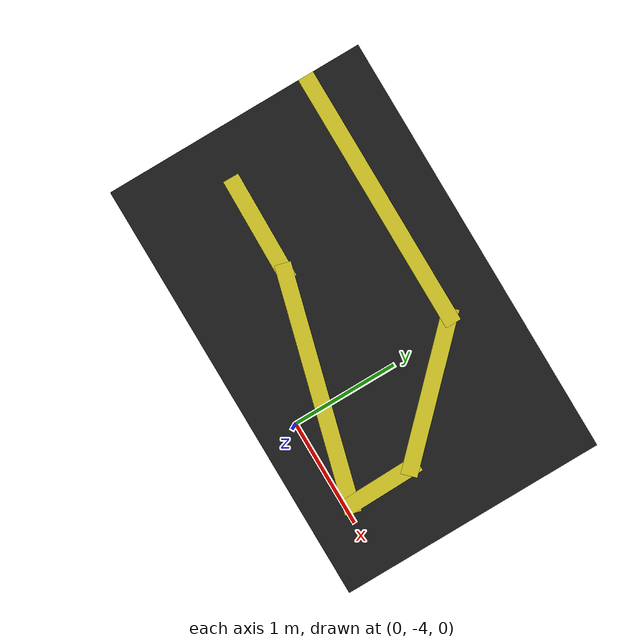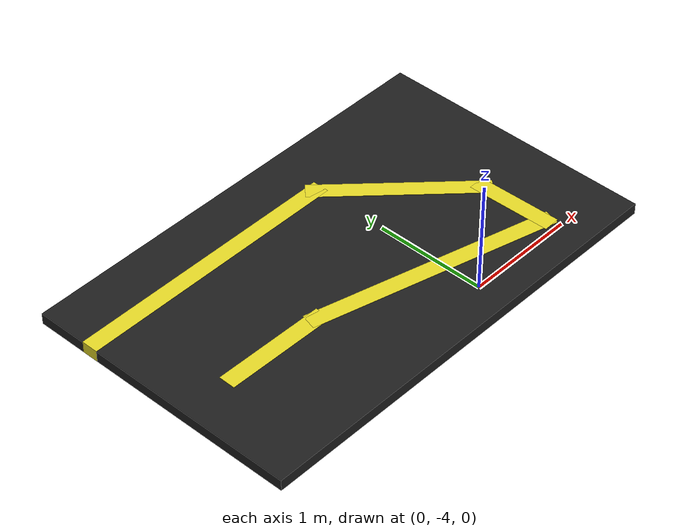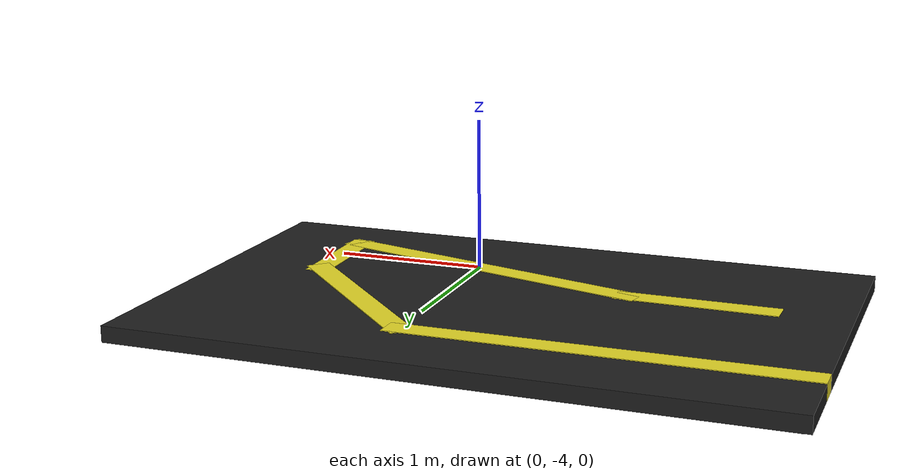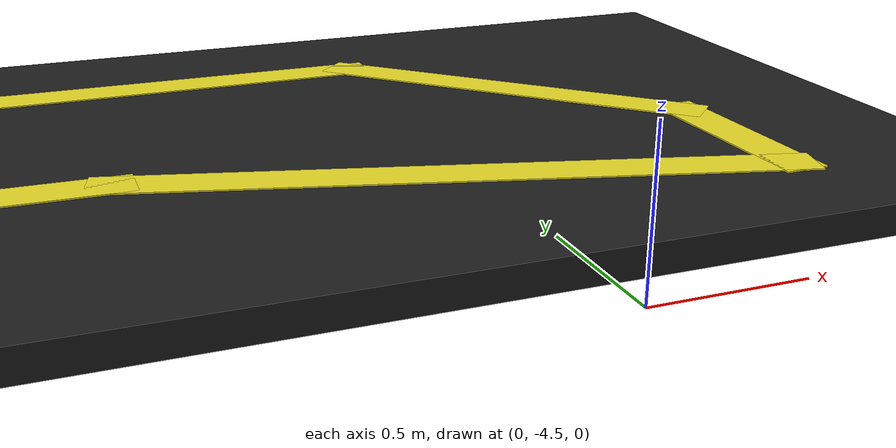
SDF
<?xml version='1.0'?>
<sdf version='1.6'>
  <model name='pista?'>
    <pose frame=''>-0.525 -3.095 0 0 -0 0</pose>
    <link name='Floor_4'>
      <collision name='Floor_4_Collision'>
        <geometry>
          <box>
            <size>4.03987 2.5 0.1</size>
          </box>
        </geometry>
        <pose frame=''>0 0 0.05 0 -0 0</pose>
      </collision>
      <visual name='Floor_4_Visual'>
        <pose frame=''>0 0 0.05 0 -0 0</pose>
        <geometry>
          <box>
            <size>4.03987 2.5 0.1</size>
          </box>
        </geometry>
        <material>
          <script>
            <uri>file://media/materials/scripts/gazebo.material</uri>
            <name>Gazebo/Black</name>
          </script>
          <ambient>0 0 0 0</ambient>
        </material>
        <meta>
          <layer>1</layer>
        </meta>
      </visual>
      <pose frame=''>0 0 0.001 0 -0 0</pose>
    </link>
    <link name='Wall_0'>
      <collision name='Wall_0_Collision'>
        <geometry>
          <box>
            <size>2.5 0.15 0.001</size>
          </box>
        </geometry>
        <pose frame=''>0 0 0.0005 0 -0 0</pose>
      </collision>
      <visual name='Wall_0_Visual'>
        <pose frame=''>0 0 0.0005 0 -0 0</pose>
        <geometry>
          <box>
            <size>2.5 0.15 0.001</size>
          </box>
        </geometry>
        <material>
          <script>
            <uri>file://media/materials/scripts/gazebo.material</uri>
            <name>Gazebo/Black</name>
          </script>
          <ambient>0 0 0 0</ambient>
        </material>
        <meta>
          <layer>0</layer>
        </meta>
      </visual>
      <pose frame=''>-1.905 0 0 0 -0 -1.5708</pose>
    </link>
    <link name='Wall_1'>
      <collision name='Wall_1_Collision'>
        <geometry>
          <box>
            <size>4 0.15 0.001</size>
          </box>
        </geometry>
        <pose frame=''>0 0 0.0005 0 -0 0</pose>
      </collision>
      <visual name='Wall_1_Visual'>
        <pose frame=''>0 0 0.0005 0 -0 0</pose>
        <geometry>
          <box>
            <size>4 0.15 0.001</size>
          </box>
        </geometry>
        <material>
          <script>
            <uri>file://media/materials/scripts/gazebo.material</uri>
            <name>Gazebo/Black</name>
          </script>
          <ambient>0 0 0 0</ambient>
        </material>
        <meta>
          <layer>0</layer>
        </meta>
      </visual>
      <pose frame=''>0.02 -1.175 0 0 -0 0</pose>
    </link>
    <link name='Wall_2'>
      <collision name='Wall_2_Collision'>
        <geometry>
          <box>
            <size>2.5 0.15 0.001</size>
          </box>
        </geometry>
        <pose frame=''>0 0 0.0005 0 -0 0</pose>
      </collision>
      <visual name='Wall_2_Visual'>
        <pose frame=''>0 0 0.0005 0 -0 0</pose>
        <geometry>
          <box>
            <size>2.5 0.15 0.001</size>
          </box>
        </geometry>
        <material>
          <script>
            <uri>file://media/materials/scripts/gazebo.material</uri>
            <name>Gazebo/Black</name>
          </script>
          <ambient>0 0 0 0</ambient>
        </material>
        <meta>
          <layer>0</layer>
        </meta>
      </visual>
      <pose frame=''>1.945 0 0 0 -0 1.5708</pose>
    </link>
    <link name='Wall_3'>
      <collision name='Wall_3_Collision'>
        <geometry>
          <box>
            <size>4 0.15 0.001</size>
          </box>
        </geometry>
        <pose frame=''>0 0 0.0005 0 -0 0</pose>
      </collision>
      <visual name='Wall_3_Visual'>
        <pose frame=''>0 0 0.0005 0 -0 0</pose>
        <geometry>
          <box>
            <size>4 0.15 0.001</size>
          </box>
        </geometry>
        <material>
          <script>
            <uri>file://media/materials/scripts/gazebo.material</uri>
            <name>Gazebo/Black</name>
          </script>
          <ambient>0 0 0 0</ambient>
        </material>
        <meta>
          <layer>0</layer>
        </meta>
      </visual>
      <pose frame=''>0.02 1.175 0 0 -0 3.14159</pose>
    </link>
    <link name='Wall_37'>
      <collision name='Wall_37_Collision'>
        <geometry>
          <box>
            <size>2.5 0.15 0.001</size>
          </box>
        </geometry>
        <pose frame=''>0 0 0.0005 0 -0 0</pose>
      </collision>
      <visual name='Wall_37_Visual'>
        <pose frame=''>0 0 0.0005 0 -0 0</pose>
        <geometry>
          <box>
            <size>2.5 0.15 0.001</size>
          </box>
        </geometry>
        <material>
          <script>
            <uri>file://media/materials/scripts/gazebo.material</uri>
            <name>Gazebo/Black</name>
          </script>
          <ambient>0 0 0 0</ambient>
        </material>
        <meta>
          <layer>1</layer>
        </meta>
      </visual>
      <pose frame=''>-1.905 0 0.001 0 -0 -1.5708</pose>
    </link>
    <link name='Wall_38'>
      <collision name='Wall_38_Collision'>
        <geometry>
          <box>
            <size>4 0.15 0.001</size>
          </box>
        </geometry>
        <pose frame=''>0 0 0.0005 0 -0 0</pose>
      </collision>
      <visual name='Wall_38_Visual'>
        <pose frame=''>0 0 0.0005 0 -0 0</pose>
        <geometry>
          <box>
            <size>4 0.15 0.001</size>
          </box>
        </geometry>
        <material>
          <script>
            <uri>file://media/materials/scripts/gazebo.material</uri>
            <name>Gazebo/Black</name>
          </script>
          <ambient>0 0 0 0</ambient>
        </material>
        <meta>
          <layer>1</layer>
        </meta>
      </visual>
      <pose frame=''>0.02 -1.175 0.001 0 -0 0</pose>
    </link>
    <link name='Wall_39'>
      <collision name='Wall_39_Collision'>
        <geometry>
          <box>
            <size>2.5 0.15 0.001</size>
          </box>
        </geometry>
        <pose frame=''>0 0 0.0005 0 -0 0</pose>
      </collision>
      <visual name='Wall_39_Visual'>
        <pose frame=''>0 0 0.0005 0 -0 0</pose>
        <geometry>
          <box>
            <size>2.5 0.15 0.001</size>
          </box>
        </geometry>
        <material>
          <script>
            <uri>file://media/materials/scripts/gazebo.material</uri>
            <name>Gazebo/Black</name>
          </script>
          <ambient>0 0 0 0</ambient>
        </material>
        <meta>
          <layer>1</layer>
        </meta>
      </visual>
      <pose frame=''>1.945 0 0.001 0 -0 1.5708</pose>
    </link>
    <link name='Wall_40'>
      <collision name='Wall_40_Collision'>
        <geometry>
          <box>
            <size>4 0.15 0.001</size>
          </box>
        </geometry>
        <pose frame=''>0 0 0.0005 0 -0 0</pose>
      </collision>
      <visual name='Wall_40_Visual'>
        <pose frame=''>0 0 0.0005 0 -0 0</pose>
        <geometry>
          <box>
            <size>4 0.15 0.001</size>
          </box>
        </geometry>
        <material>
          <script>
            <uri>file://media/materials/scripts/gazebo.material</uri>
            <name>Gazebo/Black</name>
          </script>
          <ambient>0 0 0 0</ambient>
        </material>
        <meta>
          <layer>1</layer>
        </meta>
      </visual>
      <pose frame=''>0.02 1.175 0.001 0 -0 3.14159</pose>
    </link>
    <link name='Wall_41'>
      <collision name='Wall_41_Collision'>
        <geometry>
          <box>
            <size>2.5 0.15 0.105</size>
          </box>
        </geometry>
        <pose frame=''>0 0 0.0525 0 -0 0</pose>
      </collision>
      <visual name='Wall_41_Visual'>
        <pose frame=''>0 0 0.0525 0 -0 0</pose>
        <geometry>
          <box>
            <size>2.5 0.15 0.105</size>
          </box>
        </geometry>
        <material>
          <script>
            <uri>file://media/materials/scripts/gazebo.material</uri>
            <name>Gazebo/Yellow</name>
          </script>
          <ambient>1 1 1 1</ambient>
        </material>
        <meta>
          <layer>1</layer>
        </meta>
      </visual>
      <pose frame=''>-0.77 0.721 0.001 0 -0 0</pose>
    </link>
    <link name='Wall_42'>
      <collision name='Wall_42_Collision'>
        <geometry>
          <box>
            <size>1.5 0.15 0.105</size>
          </box>
        </geometry>
        <pose frame=''>0 0 0.0525 0 -0 0</pose>
      </collision>
      <visual name='Wall_42_Visual'>
        <pose frame=''>0 0 0.0525 0 -0 0</pose>
        <geometry>
          <box>
            <size>1.5 0.15 0.105</size>
          </box>
        </geometry>
        <material>
          <script>
            <uri>file://media/materials/scripts/gazebo.material</uri>
            <name>Gazebo/Yellow</name>
          </script>
          <ambient>1 1 1 1</ambient>
        </material>
        <meta>
          <layer>1</layer>
        </meta>
      </visual>
      <pose frame=''>0.8825 0.2435 0.001 0 -0 -0.785398</pose>
    </link>
    <link name='Wall_43'>
      <collision name='Wall_43_Collision'>
        <geometry>
          <box>
            <size>0.763345 0.15 0.105</size>
          </box>
        </geometry>
        <pose frame=''>0 0 0.0525 0 -0 0</pose>
      </collision>
      <visual name='Wall_43_Visual'>
        <pose frame=''>0 0 0.0525 0 -0 0</pose>
        <geometry>
          <box>
            <size>0.763345 0.15 0.105</size>
          </box>
        </geometry>
        <material>
          <script>
            <uri>file://media/materials/scripts/gazebo.material</uri>
            <name>Gazebo/Yellow</name>
          </script>
          <ambient>1 1 1 1</ambient>
        </material>
        <meta>
          <layer>1</layer>
        </meta>
      </visual>
      <pose frame=''>1.3665 -0.5405 0.001 0 -0 -1.54959</pose>
    </link>
    <link name='Wall_44'>
      <collision name='Wall_44_Collision'>
        <geometry>
          <box>
            <size>2.25034 0.15 0.105</size>
          </box>
        </geometry>
        <pose frame=''>0 0 0.0525 0 -0 0</pose>
      </collision>
      <visual name='Wall_44_Visual'>
        <pose frame=''>0 0 0.0525 0 -0 0</pose>
        <geometry>
          <box>
            <size>2.25034 0.15 0.105</size>
          </box>
        </geometry>
        <material>
          <script>
            <uri>file://media/materials/scripts/gazebo.material</uri>
            <name>Gazebo/Yellow</name>
          </script>
          <ambient>1 1 1 1</ambient>
        </material>
        <meta>
          <layer>1</layer>
        </meta>
      </visual>
      <pose frame=''>0.3585 -0.575 0.001 0 -0 2.87964</pose>
    </link>
    <link name='Wall_45'>
      <collision name='Wall_45_Collision'>
        <geometry>
          <box>
            <size>1.0131 0.15 0.105</size>
          </box>
        </geometry>
        <pose frame=''>0 0 0.0525 0 -0 0</pose>
      </collision>
      <visual name='Wall_45_Visual'>
        <pose frame=''>0 0 0.0525 0 -0 0</pose>
        <geometry>
          <box>
            <size>1.0131 0.15 0.105</size>
          </box>
        </geometry>
        <material>
          <script>
            <uri>file://media/materials/scripts/gazebo.material</uri>
            <name>Gazebo/Yellow</name>
          </script>
          <ambient>1 1 1 1</ambient>
        </material>
        <meta>
          <layer>1</layer>
        </meta>
      </visual>
      <pose frame=''>-1.0875 -0.2965 0.001 0 -0 3.12653</pose>
    </link>
    <static>1</static>
  </model>
</sdf>
